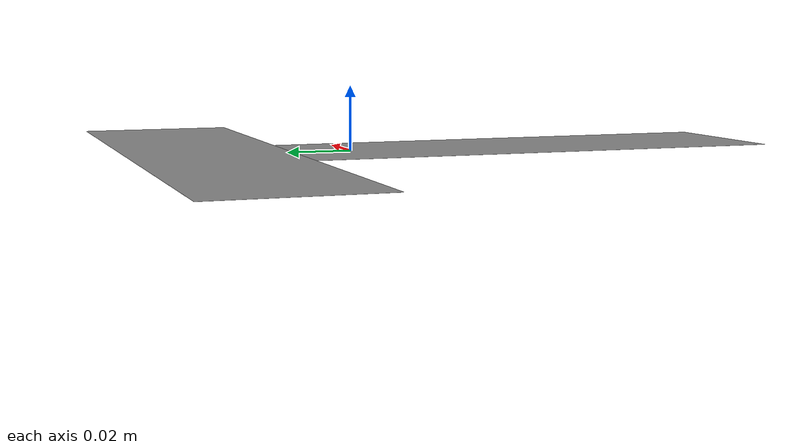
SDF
<?xml version="1.0"?>
<sdf version="1.7">
  <model name="t_pusher_goal">
    <link name="t_pusher">
      <visual name="t_pusher_top_visual">
        <pose>0.0 0.04285714 0.0 0.0 0.0 0.0</pose>
        <geometry>
          <box>
            <size>0.2 0.05 5.0e-5</size>
          </box>
        </geometry>
        <material>
          <diffuse> 0.7 0.7 0.7 1. </diffuse>
        </material>
      </visual>

      <visual name="t_pusher_bottom_visual">
        <pose>0.0 -0.05714286 0.0 0.0 0.0 0.0</pose>
        <geometry>
          <box>
            <size>0.05 0.15 5.0e-5</size>
          </box>
        </geometry>
        <material>
          <diffuse> 0.7 0.7 0.7 1. </diffuse>
        </material>
      </visual>
    </link>
  </model>
</sdf>
